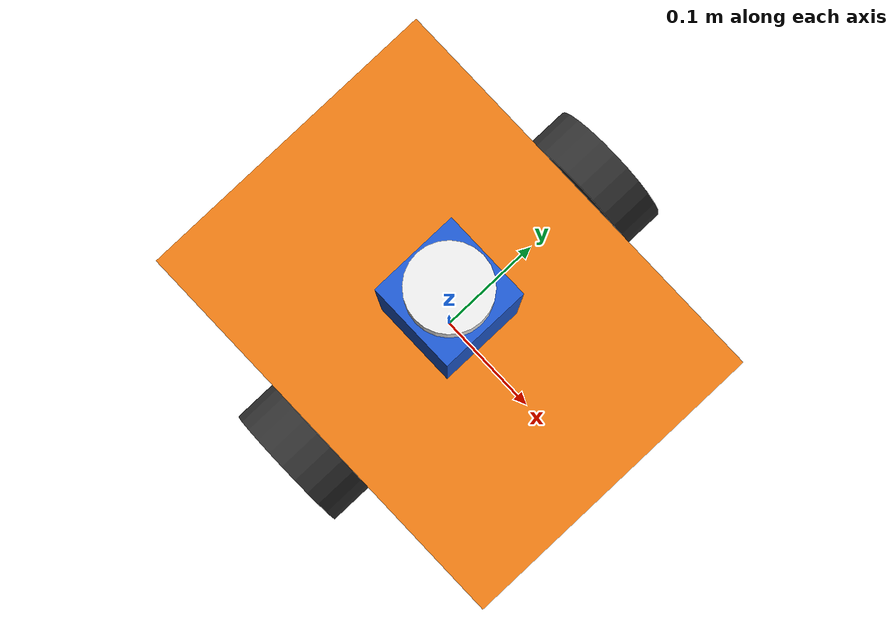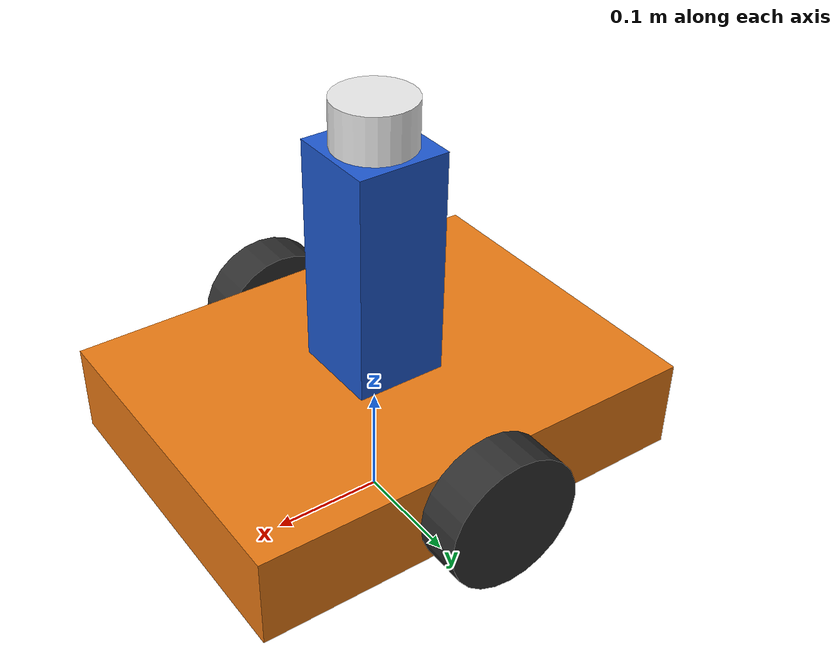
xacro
<?xml version="1.0"?>
<robot name="smart_car" xmlns:xacro="http://www.ros.org/wiki/xacro">

  <!-- ==================== 多机器人参数 ==================== -->
  <xacro:arg name="robot_namespace" default="robot1"/>

  <!-- ==================== 参数 ==================== -->
  <xacro:property name="M_PI" value="3.1415926"/>

  <!-- 底盘参数 -->
  <xacro:property name="chassis_lx"   value="0.40"/>
  <xacro:property name="chassis_ly"   value="0.30"/>
  <xacro:property name="chassis_lz"   value="0.08"/>
  <xacro:property name="chassis_mass" value="4.0"/>

  <!-- 轮子参数 -->
  <xacro:property name="wheel_radius" value="0.06"/>
  <xacro:property name="wheel_width"  value="0.04"/>
  <xacro:property name="wheel_mass"   value="0.6"/>
  <xacro:property name="wheel_sep"    value="0.34"/>

  <!-- 万向轮参数 -->
  <xacro:property name="caster_radius" value="0.01"/>
  <xacro:property name="caster_mass"   value="0.1"/>

  <!-- 传感器塔参数 -->
  <xacro:property name="tower_lx" value="0.08"/>
  <xacro:property name="tower_ly" value="0.08"/>
  <xacro:property name="tower_lz" value="0.20"/>
  <xacro:property name="tower_mass" value="0.3"/>

  <!-- ==================== 材质 ==================== -->
  <material name="orange">
    <color rgba="0.92 0.48 0.08 1"/>
  </material>
  <material name="dark_gray">
    <color rgba="0.18 0.18 0.18 1"/>
  </material>
  <material name="white">
    <color rgba="0.92 0.92 0.92 1"/>
  </material>
  <material name="blue">
    <color rgba="0.12 0.35 0.82 1"/>
  </material>
  <material name="black">
    <color rgba="0 0 0 0.95"/>
  </material>
  <material name="yellow">
    <color rgba="1 0.4 0 1"/>
  </material>

  <!-- ==================== 惯性计算宏 ==================== -->
  <xacro:macro name="box_inertial_matrix" params="m l w h">
    <inertial>
      <mass value="${m}"/>
      <origin xyz="0 0 0"/>
      <inertia
        ixx="${m*(w*w+h*h)/12}" ixy="0" ixz="0"
        iyy="${m*(l*l+h*h)/12}" iyz="0"
        izz="${m*(l*l+w*w)/12}"/>
    </inertial>
  </xacro:macro>

  <xacro:macro name="cylinder_inertial_matrix" params="m r h">
    <inertial>
      <mass value="${m}"/>
      <origin xyz="0 0 0"/>
      <inertia
        ixx="${m*(3*r*r+h*h)/12}" ixy="0" ixz="0"
        iyy="${m*(3*r*r+h*h)/12}" iyz="0"
        izz="${m*r*r/2}"/>
    </inertial>
  </xacro:macro>

  <xacro:macro name="sphere_inertial_matrix" params="m r">
    <inertial>
      <mass value="${m}"/>
      <origin xyz="0 0 0"/>
      <inertia
        ixx="${2*m*r*r/5}" ixy="0" ixz="0"
        iyy="${2*m*r*r/5}" iyz="0"
        izz="${2*m*r*r/5}"/>
    </inertial>
  </xacro:macro>

  <!-- ==================== 轮子宏（带命名空间前缀） ==================== -->
  <xacro:macro name="wheel" params="prefix reflect ns">
    <link name="${ns}_${prefix}_wheel">
      <visual>
        <geometry><cylinder radius="${wheel_radius}" length="${wheel_width}"/></geometry>
        <origin xyz="0 0 0" rpy="${M_PI/2} 0 0"/>
        <material name="dark_gray"/>
      </visual>
      <collision>
        <geometry><cylinder radius="${wheel_radius}" length="${wheel_width}"/></geometry>
        <origin xyz="0 0 0" rpy="${M_PI/2} 0 0"/>
      </collision>
      <xacro:cylinder_inertial_matrix m="${wheel_mass}" r="${wheel_radius}" h="${wheel_width}"/>
    </link>

    <joint name="${ns}_${prefix}_wheel_joint" type="continuous">
      <parent link="${ns}_base_link"/>
      <child link="${ns}_${prefix}_wheel"/>
      <origin xyz="0 ${reflect * wheel_sep/2} 0" rpy="0 0 0"/>
      <axis xyz="0 1 0"/>
      <dynamics damping="0.7" friction="0.1"/>
    </joint>

    <gazebo reference="${ns}_${prefix}_wheel">
      <material>Gazebo/Dark</material>
    </gazebo>
  </xacro:macro>

  <!-- ==================== 万向轮宏（带命名空间前缀） ==================== -->
  <xacro:macro name="caster" params="prefix reflect_x ns">
    <link name="${ns}_${prefix}_caster">
      <visual>
        <geometry><sphere radius="${caster_radius}"/></geometry>
        <origin xyz="0 0 0"/>
        <material name="dark_gray"/>
      </visual>
      <collision>
        <geometry><sphere radius="${caster_radius}"/></geometry>
        <origin xyz="0 0 0"/>
      </collision>
      <xacro:sphere_inertial_matrix m="${caster_mass}" r="${caster_radius}"/>
    </link>

    <joint name="${ns}_${prefix}_caster_joint" type="continuous">
      <parent link="${ns}_base_link"/>
      <child link="${ns}_${prefix}_caster"/>
      <origin xyz="${reflect_x * (chassis_lx/2 - 0.06)} 0 ${-chassis_lz/2 - caster_radius}"/>
      <axis xyz="0 1 0"/>
    </joint>

    <gazebo reference="${ns}_${prefix}_caster">
      <material>Gazebo/Black</material>
    </gazebo>
  </xacro:macro>

  <!-- ==================== 传感器塔宏（带命名空间前缀） ==================== -->
  <xacro:macro name="sensor_tower_macro" params="ns">
    <link name="${ns}_sensor_tower">
      <visual>
        <geometry><box size="${tower_lx} ${tower_ly} ${tower_lz}"/></geometry>
        <origin xyz="0 0 0"/>
        <material name="blue"/>
      </visual>
      <collision>
        <geometry><box size="${tower_lx} ${tower_ly} ${tower_lz}"/></geometry>
        <origin xyz="0 0 0"/>
      </collision>
      <xacro:box_inertial_matrix m="${tower_mass}" l="${tower_lx}" w="${tower_ly}" h="${tower_lz}"/>
    </link>

    <joint name="${ns}_tower_joint" type="fixed">
      <parent link="${ns}_base_link"/>
      <child link="${ns}_sensor_tower"/>
      <origin xyz="0 0 ${chassis_lz/2 + tower_lz/2}"/>
    </joint>

    <gazebo reference="${ns}_sensor_tower">
      <material>Gazebo/Blue</material>
    </gazebo>
  </xacro:macro>

  <!-- ==================== 底盘主宏 ==================== -->
  <xacro:macro name="smart_car_base" params="ns">

    <!-- ========== base_footprint 坐标系 ========== -->
    <link name="${ns}_base_footprint">
      <visual>
        <origin xyz="0 0 0" rpy="0 0 0"/>
        <geometry><box size="0.001 0.001 0.001"/></geometry>
      </visual>
    </link>

    <gazebo reference="${ns}_base_footprint">
      <turnGravityOff>false</turnGravityOff>
    </gazebo>

    <joint name="${ns}_base_footprint_joint" type="fixed">
      <origin xyz="0 0 ${chassis_lz/2 + wheel_radius}" rpy="0 0 0"/>
      <parent link="${ns}_base_footprint"/>
      <child link="${ns}_base_link"/>
    </joint>

    <!-- ========== 底盘主体 ========== -->
    <link name="${ns}_base_link">
      <visual>
        <geometry><box size="${chassis_lx} ${chassis_ly} ${chassis_lz}"/></geometry>
        <origin xyz="0 0 0"/>
        <material name="orange"/>
      </visual>
      <collision>
        <geometry><box size="${chassis_lx} ${chassis_ly} ${chassis_lz}"/></geometry>
        <origin xyz="0 0 0"/>
      </collision>
      <xacro:box_inertial_matrix m="${chassis_mass}" l="${chassis_lx}" w="${chassis_ly}" h="${chassis_lz}"/>
    </link>

    <gazebo reference="${ns}_base_link">
      <material>Gazebo/Orange</material>
    </gazebo>

    <!-- ========== 左右轮 ========== -->
    <xacro:wheel prefix="left"  reflect="1" ns="${ns}"/>
    <xacro:wheel prefix="right" reflect="-1" ns="${ns}"/>

    <!-- ========== 前后万向轮 ========== -->
    <xacro:caster prefix="front" reflect_x="1" ns="${ns}"/>
    <xacro:caster prefix="rear"  reflect_x="-1" ns="${ns}"/>

    <!-- ========== 传感器塔 ========== -->
    <xacro:sensor_tower_macro ns="${ns}"/>

    <!-- ========== 激光雷达安装座 ========== -->
    <link name="${ns}_laser_mount">
      <visual>
        <geometry><cylinder radius="0.035" length="0.04"/></geometry>
        <material name="white"/>
      </visual>
      <collision>
        <geometry><cylinder radius="0.035" length="0.04"/></geometry>
      </collision>
      <xacro:cylinder_inertial_matrix m="0.15" r="0.035" h="0.04"/>
    </link>

    <joint name="${ns}_laser_mount_joint" type="fixed">
      <parent link="${ns}_sensor_tower"/>
      <child link="${ns}_laser_mount"/>
      <origin xyz="0 0 0.12"/>
    </joint>

    <!-- ========== 差速驱动插件（参数化命名空间） ========== -->
    <gazebo>
      <plugin name="${ns}_diff_drive" filename="libgazebo_ros_diff_drive.so">
        <alwaysOn>true</alwaysOn>
        <updateRate>50</updateRate>
        <robotNamespace>/${ns}</robotNamespace>
        <leftJoint>${ns}_left_wheel_joint</leftJoint>
        <rightJoint>${ns}_right_wheel_joint</rightJoint>
        <wheelSeparation>${wheel_sep}</wheelSeparation>
        <wheelDiameter>${2*wheel_radius}</wheelDiameter>
        <wheelTorque>5</wheelTorque>
        <commandTopic>cmd_vel</commandTopic>
        <odometryTopic>odom</odometryTopic>
        <!-- 修改这里：使用带命名空间的odom坐标系 -->
        <odometryFrame>${ns}/odom</odometryFrame>
        <robotBaseFrame>${ns}_base_footprint</robotBaseFrame>
        <publishWheelTF>false</publishWheelTF>
        <publishWheelJointState>true</publishWheelJointState>
        <publishTf>1</publishTf>
      </plugin>
    </gazebo>

    <!-- ========== 激光雷达插件（参数化命名空间，360线） ========== -->
    <gazebo reference="${ns}_laser_mount">
      <sensor type="ray" name="${ns}_laser_scanner">
        <always_on>true</always_on>
        <updateRate>15</updateRate>
        <visualize>true</visualize>
        <ray>
          <scan>
            <horizontal>
              <samples>144</samples>
              <resolution>1</resolution>
              <min_angle>-3.14159</min_angle>
              <max_angle>3.14159</max_angle>
            </horizontal>
          </scan>
          <range>
            <min>0.08</min>
            <max>8.0</max>
            <resolution>0.01</resolution>
          </range>
          <noise>
            <type>gaussian</type>
            <mean>0.0</mean>
            <stddev>0.005</stddev>
          </noise>
        </ray>
        <plugin name="${ns}_laser_plugin" filename="libgazebo_ros_laser.so">
          <alwaysOn>true</alwaysOn>
          <updateRate>15</updateRate>
          <robotNamespace>/${ns}</robotNamespace>
          <topicName>scan</topicName>
          <frameName>${ns}_laser_mount</frameName>
        </plugin>
      </sensor>
    </gazebo>

  </xacro:macro>

  <!-- 调用底盘主宏，传入命名空间参数 -->
  <xacro:smart_car_base ns="$(arg robot_namespace)"/>

</robot>
